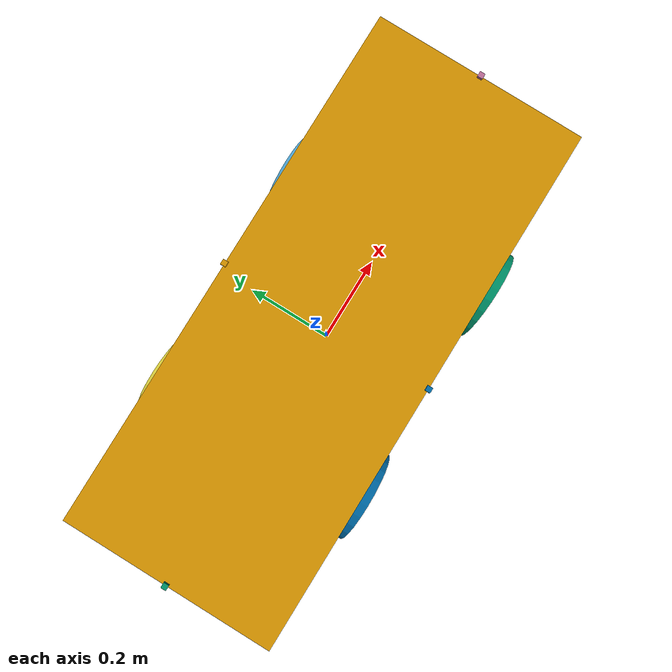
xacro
<?xml version="1.0"?>
<robot name="HG_mobile">

    <macro name="box_inertia" params="m h w d">
        <inertia  ixx="${m*((h*h)+(d*d))/12}" ixy = "0" ixz = "0"
                iyy="${m*((w*w)+(d*d))/12}" iyz = "0"
                izz="${m*((h*h)+(w*w))/12}" />
    </macro>

    <macro name="cylinder_inertia" params="m r h">
        <inertia  ixx="${m*(3*r*r+h*h)/12}" ixy = "0" ixz = "0"
                iyy="${m*(3*r*r+h*h)/12}" iyz = "0"
                izz="${m*r*r/2}" />
    </macro>

    <macro name="sphere_inertia" params="m r">
        <inertia  ixx="${2*m*r*r/5}" ixy = "0" ixz = "0"
                iyy="${2*m*r*r/5}" iyz = "0"
                izz="${2*m*r*r/5}" />
    </macro>

    <property name="PI" value="3.1415926535897931" />
    <property name="camera_angle" value="${0}" />

    <link name='chassis'>

        <inertial name="body_inertia">
            <mass value="5" />
            <origin rpy="0 0 0" xyz="0 0 0.25"/>
            <box_inertia m="5" h="0.4" w="1" d="0.3" />
        </inertial>

        <collision name='collision'>
            <origin rpy="0 0 0" xyz="0 0 0.25"/>
            <geometry>
                <box size="1 0.4 0.3" />
            </geometry>
        </collision>

        <visual name='visual'>
            <origin rpy="0 0 0" xyz="0 0 0.25"/>
            <geometry>
                <box size="1 0.4 0.3" />
            </geometry>
        </visual>

    </link>

    <link name="left_front_wheel">

        <inertial>
            <mass value="0.05"/>
            <origin rpy="1.5707 0 0" xyz="0 0.025 0"/>
            <cylinder_inertia  m="0.05" r="0.1" h="0.05" />
        </inertial>
        <collision name="collision">
            <origin rpy="1.5707 0 0" xyz="0 0.025 0"/>
            <geometry>
                <cylinder length="0.05" radius="0.1"/>
            </geometry>
        </collision>
        <visual name="visual">
            <origin rpy="1.5707 0 0" xyz="0 0.025 0"/>
            <geometry>
                <cylinder length="0.05" radius="0.1"/>
            </geometry>
        </visual>

        <surface>
            <friction>
            <ode>
                <mu>0.01</mu>
                <mu2>0.01</mu2>
            </ode>
            </friction>
        </surface>

    </link>

    <joint type="continuous" name="left_front_wheel_hinge">
        <origin rpy="0 0 0" xyz="0.25 0.2 0.1"/>
        <child link="left_front_wheel" />
        <parent link="chassis" />
        <axis xyz="0 1 0" />
    </joint>

    <link name="right_front_wheel">
        <inertial>
            <mass value="0.05"/>
            <origin rpy="1.5707 0 0" xyz="0 0.025 0"/>
            <cylinder_inertia  m="0.05" r="0.1" h="0.05" />
        </inertial>
        <collision name="collision">
            <origin rpy="1.5707 0 0" xyz="0 0.025 0"/>
            <geometry>
                <cylinder length="0.05" radius="0.1"/>
            </geometry>
        </collision>
        <visual name="visual">
            <origin rpy="1.5707 0 0" xyz="0 0.025 0"/>
            <geometry>
                <cylinder length="0.05" radius="0.1"/>
            </geometry>
        </visual>
        <surface>
            <friction>
            <ode>
                <mu>0.01</mu>
                <mu2>0.01</mu2>
            </ode>
            </friction>
        </surface>

    </link>

    <joint type="continuous" name="right_front_wheel_hinge">
        <origin rpy="0 -1.5707 3.1415" xyz="0.25 -0.2 0.1"/>
        <child link="right_front_wheel" />
        <parent link="chassis" />
        <axis xyz="0 1 0" />

    </joint>

<link name="left_back_wheel">

        <inertial>
            <mass value="0.05"/>
            <origin rpy="1.5707 0 0" xyz="0 0.025 0"/>
            <cylinder_inertia  m="0.05" r="0.1" h="0.05" />
        </inertial>
        <collision name="collision">
            <origin rpy="1.5707 0 0" xyz="0 0.025 0"/>
            <geometry>
                <cylinder length="0.05" radius="0.1"/>
            </geometry>
        </collision>
        <visual name="visual">
            <origin rpy="1.5707 0 0" xyz="0 0.025 0"/>
            <geometry>
                <cylinder length="0.05" radius="0.1"/>
            </geometry>
        </visual>

        <surface>
            <friction>
            <ode>
                <mu>0.01</mu>
                <mu2>0.01</mu2>
            </ode>
            </friction>
        </surface>

    </link>

    <joint type="continuous" name="left_back_wheel_hinge">
        <origin rpy="0 0 0" xyz="-0.25 0.2 0.1"/>
        <child link="left_back_wheel" />
        <parent link="chassis" />
        <axis xyz="0 1 0" />
    </joint>

    <link name="right_back_wheel">
        <inertial>
            <mass value="0.05"/>
            <origin rpy="1.5707 0 0" xyz="0 0.025 0"/>
            <cylinder_inertia  m="0.05" r="0.1" h="0.05" />
        </inertial>
        <collision name="collision">
            <origin rpy="1.5707 0 0" xyz="0 0.025 0"/>
            <geometry>
                <cylinder length="0.05" radius="0.1"/>
            </geometry>
        </collision>
        <visual name="visual">
            <origin rpy="1.5707 0 0" xyz="0 0.025 0"/>
            <geometry>
                <cylinder length="0.05" radius="0.1"/>
            </geometry>
        </visual>

        <surface>
            <friction>
            <ode>
                <mu>0.01</mu>
                <mu2>0.01</mu2>
            </ode>
            </friction>
        </surface>

    </link>

    <joint type="continuous" name="right_back_wheel_hinge">
        <origin rpy="0 -1.5707 3.1415" xyz="-0.25 -0.2 0.1"/>
        <child link="right_back_wheel" />
        <parent link="chassis" />
        <axis xyz="0 1 0" />

    </joint>

    <link name="camera1_adj"></link>

    <link name='camera1_link'>

        <inertial name="camera1_inertia">
            <mass value="0.01" />
            <origin rpy="0 0 0" xyz="0 0 0"/>
            <box_inertia m="0.01" h="0.01" w="0.01" d="0.01" />
        </inertial>

        <collision name='collision'>
            <origin rpy="0 0 0" xyz="0 0 0"/>
            <geometry>
                <box size="0.01 0.01 0.01" />
            </geometry>
        </collision>

        <visual name='visual'>
            <origin rpy="0 0 0" xyz="0 0 0"/>
            <geometry>
                <box size="0.01 0.01 0.01" />
            </geometry>
        </visual>

    </link>

    <gazebo reference="camera1_link">
        <sensor type="camera" name="camera1">
        <update_rate>30.0</update_rate>
        <camera name="camera1">
            <horizontal_fov>2.2689</horizontal_fov>
            <image>
            <width>1920</width>
            <height>1080</height>
            <format>R8G8B8</format>
            </image>
            <clip>
            <near>0.02</near>
            <far>300</far>
            </clip>
            <noise>
            <type>gaussian</type>
            <!-- Noise is sampled independently per pixel on each frame.
                That pixel's noise value is added to each of its color
                channels, which at that point lie in the range [0,1]. -->
            <mean>0.0</mean>
            <stddev>0.007</stddev>
            </noise>
        </camera>

        <plugin name="camera_controller" filename="libgazebo_ros_camera.so">
            <alwaysOn>true</alwaysOn>
            <updateRate>10.0</updateRate>
            <cameraName>camera1</cameraName>
            <imageTopicName>image_raw</imageTopicName>
            <cameraInfoTopicName>camera_info</cameraInfoTopicName>
            <frameName>camera1_link</frameName>
            <hackBaseline>1.57</hackBaseline>
            <distortionK1>0.0</distortionK1>
            <distortionK2>0.0</distortionK2>
            <distortionK3>0.0</distortionK3>
            <distortionT1>0.0</distortionT1>
            <distortionT2>0.0</distortionT2>
        </plugin>
        </sensor>
    </gazebo>

    <joint name="camera1_optical_joint" type="fixed">
        <origin xyz="0 0 0" rpy="0 ${camera_angle} 0" />
        <parent link="camera1_adj" />
        <child link="camera1_link"/>
    </joint>

    <joint name="camera1_joint" type="fixed">
        <origin xyz="0.5 0 0.4" rpy="0 0 0"/>
        <parent link="chassis"/>
        <child link="camera1_adj"/>
    </joint>

    <link name="camera2_adj"></link>

    <link name='camera2_link'>

        <inertial name="camera2_inertia">
            <mass value="0.01" />
            <origin rpy="0 0 0" xyz="0 0 0"/>
            <box_inertia m="0.01" h="0.01" w="0.01" d="0.01" />
        </inertial>

        <collision name='collision'>
            <origin rpy="0 0 0" xyz="0 0 0"/>
            <geometry>
                <box size="0.01 0.01 0.01" />
            </geometry>
        </collision>

        <visual name='visual'>
            <origin rpy="0 0 0" xyz="0 0 0"/>
            <geometry>
                <box size="0.01 0.01 0.01" />
            </geometry>
        </visual>

    </link>

    <gazebo reference="camera2_link">
        <sensor type="camera" name="camera2">
        <update_rate>30.0</update_rate>
        <camera name="camera2">
            <horizontal_fov>2.2689</horizontal_fov>
            <image>
            <width>1920</width>
            <height>1080</height>
            <format>R8G8B8</format>
            </image>
            <clip>
            <near>0.02</near>
            <far>300</far>
            </clip>
            <noise>
            <type>gaussian</type>
            <!-- Noise is sampled independently per pixel on each frame.
                That pixel's noise value is added to each of its color
                channels, which at that point lie in the range [0,1]. -->
            <mean>0.0</mean>
            <stddev>0.007</stddev>
            </noise>
        </camera>

        <plugin name="camera_controller" filename="libgazebo_ros_camera.so">
            <alwaysOn>true</alwaysOn>
            <updateRate>10.0</updateRate>
            <cameraName>camera2</cameraName>
            <imageTopicName>image_raw</imageTopicName>
            <cameraInfoTopicName>camera_info</cameraInfoTopicName>
            <frameName>camera2_link</frameName>
            <hackBaseline>1.57</hackBaseline>
            <distortionK1>0.0</distortionK1>
            <distortionK2>0.0</distortionK2>
            <distortionK3>0.0</distortionK3>
            <distortionT1>0.0</distortionT1>
            <distortionT2>0.0</distortionT2>
        </plugin>
        </sensor>
    </gazebo>

    <joint name="camera2_optical_joint" type="fixed">
        <origin xyz="0 0 0" rpy="0 ${camera_angle} ${PI/2}" />
        <parent link="camera2_adj" />
        <child link="camera2_link"/>
    </joint>

    <joint name="camera2_joint" type="fixed">
        <origin xyz="0 0.2 0.4" rpy="0 0 0"/>
        <parent link="chassis"/>
        <child link="camera2_adj"/>
    </joint>

    <link name="camera3_adj"></link>

    <link name='camera3_link'>

        <inertial name="camera3_inertia">
            <mass value="0.01" />
            <origin rpy="0 0 0" xyz="0 0 0"/>
            <box_inertia m="0.01" h="0.01" w="0.01" d="0.01" />
        </inertial>

        <collision name='collision'>
            <origin rpy="0 0 0" xyz="0 0 0"/>
            <geometry>
                <box size="0.01 0.01 0.01" />
            </geometry>
        </collision>

        <visual name='visual'>
            <origin rpy="0 0 0" xyz="0 0 0"/>
            <geometry>
                <box size="0.01 0.01 0.01" />
            </geometry>
        </visual>

    </link>

    <gazebo reference="camera3_link">
        <sensor type="camera" name="camera3">
        <update_rate>30.0</update_rate>
        <camera name="camera3">
            <horizontal_fov>2.2689</horizontal_fov>
            <image>
            <width>1920</width>
            <height>1080</height>
            <format>R8G8B8</format>
            </image>
            <clip>
            <near>0.02</near>
            <far>300</far>
            </clip>
            <noise>
            <type>gaussian</type>
            <!-- Noise is sampled independently per pixel on each frame.
                That pixel's noise value is added to each of its color
                channels, which at that point lie in the range [0,1]. -->
            <mean>0.0</mean>
            <stddev>0.007</stddev>
            </noise>
        </camera>

        <plugin name="camera_controller" filename="libgazebo_ros_camera.so">
            <alwaysOn>true</alwaysOn>
            <updateRate>10.0</updateRate>
            <cameraName>camera3</cameraName>
            <imageTopicName>image_raw</imageTopicName>
            <cameraInfoTopicName>camera_info</cameraInfoTopicName>
            <frameName>camera3_link</frameName>
            <hackBaseline>1.57</hackBaseline>
            <distortionK1>0.0</distortionK1>
            <distortionK2>0.0</distortionK2>
            <distortionK3>0.0</distortionK3>
            <distortionT1>0.0</distortionT1>
            <distortionT2>0.0</distortionT2>
        </plugin>
        </sensor>
    </gazebo>

    <joint name="camera3_optical_joint" type="fixed">
        <origin xyz="0 0 0" rpy="0 ${camera_angle} ${PI}" />
        <parent link="camera3_adj" />
        <child link="camera3_link"/>
    </joint>

    <joint name="camera3_joint" type="fixed">
        <origin xyz="-0.5 0 0.4" rpy="0 0 0"/>
        <parent link="chassis"/>
        <child link="camera3_adj"/>
    </joint>

    <link name="camera4_adj"></link>

    <link name='camera4_link'>

        <inertial name="camera4_inertia">
            <mass value="0.01" />
            <origin rpy="0 0 0" xyz="0 0 0"/>
            <box_inertia m="0.01" h="0.01" w="0.01" d="0.01" />
        </inertial>

        <collision name='collision'>
            <origin rpy="0 0 0" xyz="0 0 0"/>
            <geometry>
                <box size="0.01 0.01 0.01" />
            </geometry>
        </collision>

        <visual name='visual'>
            <origin rpy="0 0 0" xyz="0 0 0"/>
            <geometry>
                <box size="0.01 0.01 0.01" />
            </geometry>
        </visual>

    </link>

    <gazebo reference="camera4_link">
        <sensor type="camera" name="camera4">
        <update_rate>30.0</update_rate>
        <camera name="camera4">
            <horizontal_fov>2.2689</horizontal_fov>
            <image>
            <width>1920</width>
            <height>1080</height>
            <format>R8G8B8</format>
            </image>
            <clip>
            <near>0.02</near>
            <far>300</far>
            </clip>
            <noise>
            <type>gaussian</type>
            <!-- Noise is sampled independently per pixel on each frame.
                That pixel's noise value is added to each of its color
                channels, which at that point lie in the range [0,1]. -->
            <mean>0.0</mean>
            <stddev>0.007</stddev>
            </noise>
        </camera>

        <plugin name="camera_controller" filename="libgazebo_ros_camera.so">
            <alwaysOn>true</alwaysOn>
            <updateRate>10.0</updateRate>
            <cameraName>camera4</cameraName>
            <imageTopicName>image_raw</imageTopicName>
            <cameraInfoTopicName>camera_info</cameraInfoTopicName>
            <frameName>camera4_link</frameName>
            <hackBaseline>1.57</hackBaseline>
            <distortionK1>0.0</distortionK1>
            <distortionK2>0.0</distortionK2>
            <distortionK3>0.0</distortionK3>
            <distortionT1>0.0</distortionT1>
            <distortionT2>0.0</distortionT2>
        </plugin>
        </sensor>
    </gazebo>

    <joint name="camera4_optical_joint" type="fixed">
        <origin xyz="0 0 0" rpy="0 ${camera_angle} ${-PI/2}" />
        <parent link="camera4_adj" />
        <child link="camera4_link"/>
    </joint>

    <joint name="camera4_joint" type="fixed">
        <origin xyz="0 -0.2 0.4" rpy="0 0 0"/>
        <parent link="chassis"/>
        <child link="camera4_adj"/>
    </joint>

</robot>
